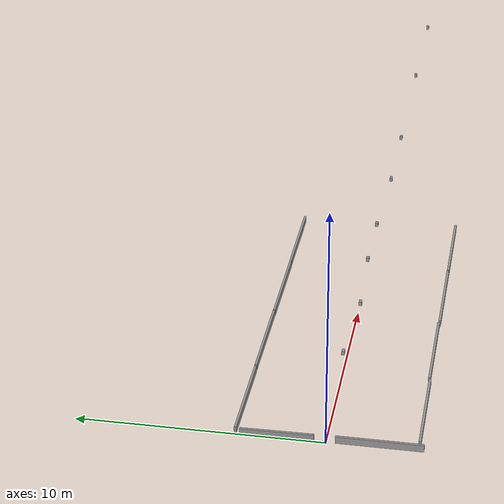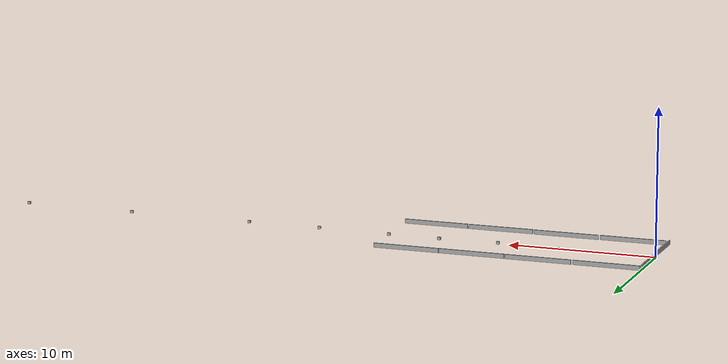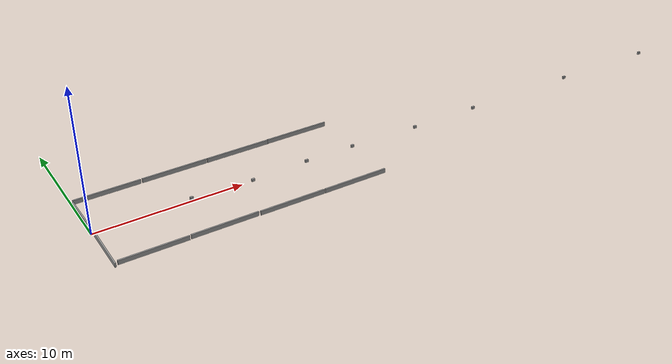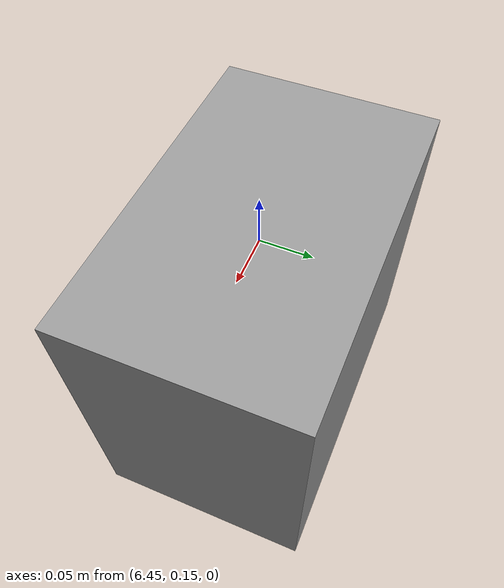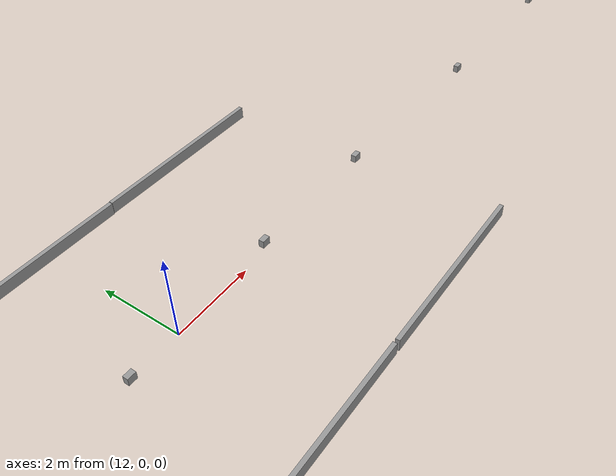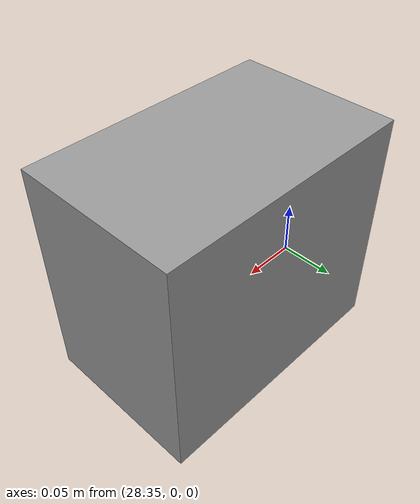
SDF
<sdf version="1.6">
 <world name="default">
  <scene>
   <grid>0</grid>
   <ambient>0.4 0.4 0.4 1</ambient>
   <background>0.7 0.7 0.7 1</background>
   <shadows>1</shadows>
  </scene>
  <light name="sun" type="directional">
   <pose>0 0 10 0 -0 0</pose>
   <diffuse>0.8 0.8 0.8 1</diffuse>
   <specular>0.2 0.2 0.2 1</specular>
   <attenuation>
    <range>1000</range>
    <constant>0.9</constant>
    <linear>0.01</linear>
    <quadratic>0.001</quadratic>
   </attenuation>
   <direction>-0.5 0.1 -0.9</direction>
  </light>
  <model name="ground">
   <link name="body">
    <collision name="geom">
     <geometry><plane><normal>0 0 1</normal><size>1 1</size></plane></geometry>
     <surface><friction><ode><mu>100</mu><mu2>50</mu2></ode></friction></surface>
    </collision>
   </link>
   <static>1</static>
  </model>
  <gravity>0 0 -9.8</gravity>
  <magnetic_field>6e-06 2.3e-05 -4.2e-05</magnetic_field>
  <atmosphere type="adiabatic"/>
  <physics name="default_physics" default="0" type="ode">
   <max_step_size>0.001</max_step_size>
   <real_time_factor>1</real_time_factor>
   <real_time_update_rate>1000</real_time_update_rate>
  </physics>
  <spherical_coordinates>
   <surface_model>EARTH_WGS84</surface_model>
   <latitude_deg>0</latitude_deg>
   <longitude_deg>0</longitude_deg>
   <elevation>0</elevation>
   <heading_deg>0</heading_deg>
  </spherical_coordinates>
  <model name="unit_box_clone">
   <pose>18.3576 0.153567 0.092537 0 3e-06 6.1e-05</pose>
   <link name="link">
    <inertial>
     <mass>1</mass>
     <inertia>
      <ixx>0.166667</ixx>
      <ixy>0</ixy>
      <ixz>0</ixz>
      <iyy>0.166667</iyy>
      <iyz>0</iyz>
      <izz>0.166667</izz>
     </inertia>
    </inertial>
    <collision name="collision">
     <geometry><box><size>0.208625 0.131935 0.185073</size></box></geometry>
    </collision>
    <visual name="visual">
     <geometry><box><size>0.208625 0.131935 0.185073</size></box></geometry>
     <material>
      <script><name>Gazebo/Grey</name><uri>file://media/materials/scripts/gazebo.material</uri></script>
     </material>
    </visual>
   </link>
  </model>
  <model name="unit_box_clone_0">
   <pose>14.8199 0.165227 0.092537 1e-06 2e-06 -2.1e-05</pose>
   <link name="link">
    <inertial>
     <mass>1</mass>
     <inertia>
      <ixx>0.166667</ixx>
      <ixy>0</ixy>
      <ixz>0</ixz>
      <iyy>0.166667</iyy>
      <iyz>0</iyz>
      <izz>0.166667</izz>
     </inertia>
    </inertial>
    <collision name="collision">
     <geometry><box><size>0.208625 0.131935 0.185073</size></box></geometry>
    </collision>
    <visual name="visual">
     <geometry><box><size>0.208625 0.131935 0.185073</size></box></geometry>
     <material>
      <script><name>Gazebo/Grey</name><uri>file://media/materials/scripts/gazebo.material</uri></script>
     </material>
    </visual>
   </link>
  </model>
  <model name="unit_box_clone_1">
   <pose>6.57826 0.207009 0.092536 4e-06 3e-06 5.9e-05</pose>
   <link name="link">
    <inertial>
     <mass>1</mass>
     <inertia>
      <ixx>0.166667</ixx>
      <ixy>0</ixy>
      <ixz>0</ixz>
      <iyy>0.166667</iyy>
      <iyz>0</iyz>
      <izz>0.166667</izz>
     </inertia>
    </inertial>
    <collision name="collision">
     <geometry><box><size>0.208625 0.131935 0.185073</size></box></geometry>
    </collision>
    <visual name="visual">
     <geometry><box><size>0.208625 0.131935 0.185073</size></box></geometry>
     <material>
      <script><name>Gazebo/Grey</name><uri>file://media/materials/scripts/gazebo.material</uri></script>
     </material>
    </visual>
   </link>
  </model>
  <model name="unit_box_clone_2">
   <pose>10.7706 -0 0.092537 0 3e-06 4e-05</pose>
   <link name="link">
    <inertial>
     <mass>1</mass>
     <inertia>
      <ixx>0.166667</ixx>
      <ixy>0</ixy>
      <ixz>0</ixz>
      <iyy>0.166667</iyy>
      <iyz>0</iyz>
      <izz>0.166667</izz>
     </inertia>
    </inertial>
    <collision name="collision">
     <geometry><box><size>0.208625 0.131935 0.185073</size></box></geometry>
    </collision>
    <visual name="visual">
     <geometry><box><size>0.208625 0.131935 0.185073</size></box></geometry>
     <material>
      <script><name>Gazebo/Grey</name><uri>file://media/materials/scripts/gazebo.material</uri></script>
     </material>
    </visual>
   </link>
  </model>
  <model name="unit_box_0">
   <pose>2.53327 -3.59011 0.148764 0.000538 2.2e-05 0.000339</pose>
   <link name="link">
    <inertial>
     <mass>1</mass>
     <inertia>
      <ixx>0.166667</ixx>
      <ixy>0</ixy>
      <ixz>0</ixz>
      <iyy>0.166667</iyy>
      <iyz>0</iyz>
      <izz>0.166667</izz>
     </inertia>
    </inertial>
    <collision name="collision"><geometry><box><size>4.48059 0.098067 0.297572</size></box></geometry></collision>
    <visual name="visual">
     <geometry><box><size>4.48059 0.098067 0.297572</size></box></geometry>
     <material>
      <script><name>Gazebo/Grey</name><uri>file://media/materials/scripts/gazebo.material</uri></script>
     </material>
    </visual>
   </link>
  </model>
  <model name="unit_box_0_clone">
   <pose>7.12088 -3.5562 0.147976 -0.000908 -0.000381 -5.9e-05</pose>
   <link name="link">
    <inertial>
     <mass>1</mass>
     <inertia>
      <ixx>0.166667</ixx>
      <ixy>0</ixy>
      <ixz>0</ixz>
      <iyy>0.166667</iyy>
      <iyz>0</iyz>
      <izz>0.166667</izz>
     </inertia>
    </inertial>
    <collision name="collision"><geometry><box><size>4.4806 0.098067 0.297572</size></box></geometry></collision>
    <visual name="visual">
     <geometry><box><size>4.4806 0.098067 0.297572</size></box></geometry>
     <material>
      <script><name>Gazebo/Grey</name><uri>file://media/materials/scripts/gazebo.material</uri></script>
     </material>
    </visual>
   </link>
  </model>
  <model name="unit_box_0_clone_0">
   <pose>11.7118 -3.59255 0.147701 -0.000765 0.000501 0</pose>
   <link name="link">
    <inertial>
     <mass>1</mass>
     <inertia>
      <ixx>0.166667</ixx>
      <ixy>0</ixy>
      <ixz>0</ixz>
      <iyy>0.166667</iyy>
      <iyz>0</iyz>
      <izz>0.166667</izz>
     </inertia>
    </inertial>
    <collision name="collision"><geometry><box><size>4.4806 0.098067 0.297572</size></box></geometry></collision>
    <visual name="visual">
     <geometry><box><size>4.4806 0.098067 0.297572</size></box></geometry>
     <material>
      <script><name>Gazebo/Grey</name><uri>file://media/materials/scripts/gazebo.material</uri></script>
     </material>
    </visual>
   </link>
  </model>
  <model name="unit_box_0_clone_1">
   <pose>16.2716 -3.59871 0.147977 -0.000913 -0.000381 -1e-06</pose>
   <link name="link">
    <inertial>
     <mass>1</mass>
     <inertia>
      <ixx>0.166667</ixx>
      <ixy>0</ixy>
      <ixz>0</ixz>
      <iyy>0.166667</iyy>
      <iyz>0</iyz>
      <izz>0.166667</izz>
     </inertia>
    </inertial>
    <collision name="collision"><geometry><box><size>4.4806 0.098067 0.297572</size></box></geometry></collision>
    <visual name="visual">
     <geometry><box><size>4.4806 0.098067 0.297572</size></box></geometry>
     <material>
      <script><name>Gazebo/Grey</name><uri>file://media/materials/scripts/gazebo.material</uri></script>
     </material>
    </visual>
   </link>
  </model>
  <model name="unit_box_0_clone_2">
   <pose>2.3302 3.59076 0.147302 0.000292 -0.000669 0.000138</pose>
   <link name="link">
    <inertial>
     <mass>1</mass>
     <inertia>
      <ixx>0.166667</ixx>
      <ixy>0</ixy>
      <ixz>0</ixz>
      <iyy>0.166667</iyy>
      <iyz>0</iyz>
      <izz>0.166667</izz>
     </inertia>
    </inertial>
    <collision name="collision"><geometry><box><size>4.4806 0.098067 0.297572</size></box></geometry></collision>
    <visual name="visual">
     <geometry><box><size>4.4806 0.098067 0.297572</size></box></geometry>
     <material>
      <script><name>Gazebo/Grey</name><uri>file://media/materials/scripts/gazebo.material</uri></script>
     </material>
    </visual>
   </link>
  </model>
  <model name="unit_box_0_clone_3">
   <pose>6.91565 3.59862 0.147669 0.000786 0.000516 3e-06</pose>
   <link name="link">
    <inertial>
     <mass>1</mass>
     <inertia>
      <ixx>0.166667</ixx>
      <ixy>0</ixy>
      <ixz>0</ixz>
      <iyy>0.166667</iyy>
      <iyz>0</iyz>
      <izz>0.166667</izz>
     </inertia>
    </inertial>
    <collision name="collision"><geometry><box><size>4.4806 0.098067 0.297572</size></box></geometry></collision>
    <visual name="visual">
     <geometry><box><size>4.4806 0.098067 0.297572</size></box></geometry>
     <material>
      <script><name>Gazebo/Grey</name><uri>file://media/materials/scripts/gazebo.material</uri></script>
     </material>
    </visual>
   </link>
  </model>
  <model name="unit_box_0_clone_4">
   <pose>11.4583 3.59109 0.148392 0.000826 -0.000194 2e-06</pose>
   <link name="link">
    <inertial>
     <mass>1</mass>
     <inertia>
      <ixx>0.166667</ixx>
      <ixy>0</ixy>
      <ixz>0</ixz>
      <iyy>0.166667</iyy>
      <iyz>0</iyz>
      <izz>0.166667</izz>
     </inertia>
    </inertial>
    <collision name="collision"><geometry><box><size>4.4806 0.098067 0.297572</size></box></geometry></collision>
    <visual name="visual">
     <geometry><box><size>4.4806 0.098067 0.297572</size></box></geometry>
     <material>
      <script><name>Gazebo/Grey</name><uri>file://media/materials/scripts/gazebo.material</uri></script>
     </material>
    </visual>
   </link>
  </model>
  <model name="unit_box_0_clone_5">
   <pose>15.9504 3.60534 0.148657 0.000603 7.1e-05 0</pose>
   <link name="link">
    <inertial>
     <mass>1</mass>
     <inertia>
      <ixx>0.166667</ixx>
      <ixy>0</ixy>
      <ixz>0</ixz>
      <iyy>0.166667</iyy>
      <iyz>0</iyz>
      <izz>0.166667</izz>
     </inertia>
    </inertial>
    <collision name="collision"><geometry><box><size>4.4806 0.098067 0.297572</size></box></geometry></collision>
    <visual name="visual">
     <geometry><box><size>4.4806 0.098067 0.297572</size></box></geometry>
     <material>
      <script><name>Gazebo/Grey</name><uri>file://media/materials/scripts/gazebo.material</uri></script>
     </material>
    </visual>
   </link>
  </model>
  <model name="unit_box_clone_0_clone">
   <pose>37.1252 0.071099 0.092536 -3e-06 -3e-06 7.4e-05</pose>
   <link name="link">
    <inertial>
     <mass>1</mass>
     <inertia>
      <ixx>0.166667</ixx>
      <ixy>0</ixy>
      <ixz>0</ixz>
      <iyy>0.166667</iyy>
      <iyz>0</iyz>
      <izz>0.166667</izz>
     </inertia>
    </inertial>
    <collision name="collision">
     <geometry><box><size>0.208625 0.131935 0.185073</size></box></geometry>
    </collision>
    <visual name="visual">
     <geometry><box><size>0.208625 0.131935 0.185073</size></box></geometry>
     <material>
      <script><name>Gazebo/Grey</name><uri>file://media/materials/scripts/gazebo.material</uri></script>
     </material>
    </visual>
   </link>
  </model>
  <model name="unit_box_clone_0_clone_0">
   <pose>23.3906 0.001329 0.092536 -1e-06 4e-06 -6e-06</pose>
   <link name="link">
    <inertial>
     <mass>1</mass>
     <inertia>
      <ixx>0.166667</ixx>
      <ixy>0</ixy>
      <ixz>0</ixz>
      <iyy>0.166667</iyy>
      <iyz>0</iyz>
      <izz>0.166667</izz>
     </inertia>
    </inertial>
    <collision name="collision">
     <geometry><box><size>0.208625 0.131935 0.185073</size></box></geometry>
    </collision>
    <visual name="visual">
     <geometry><box><size>0.208625 0.131935 0.185073</size></box></geometry>
     <material>
      <script><name>Gazebo/Grey</name><uri>file://media/materials/scripts/gazebo.material</uri></script>
     </material>
    </visual>
   </link>
  </model>
  <model name="unit_box_clone_0_clone_1">
   <pose>44.9111 0.066569 0.092536 -1e-06 3e-06 2e-06</pose>
   <link name="link">
    <inertial>
     <mass>1</mass>
     <inertia>
      <ixx>0.166667</ixx>
      <ixy>0</ixy>
      <ixz>0</ixz>
      <iyy>0.166667</iyy>
      <iyz>0</iyz>
      <izz>0.166667</izz>
     </inertia>
    </inertial>
    <collision name="collision">
     <geometry><box><size>0.208625 0.131935 0.185073</size></box></geometry>
    </collision>
    <visual name="visual">
     <geometry><box><size>0.208625 0.131935 0.185073</size></box></geometry>
     <material>
      <script><name>Gazebo/Grey</name><uri>file://media/materials/scripts/gazebo.material</uri></script>
     </material>
    </visual>
   </link>
  </model>
  <model name="unit_box_clone_0_clone_2">
   <pose>28.4714 0.025506 0.092536 3e-06 -3e-06 5.4e-05</pose>
   <link name="link">
    <inertial>
     <mass>1</mass>
     <inertia>
      <ixx>0.166667</ixx>
      <ixy>0</ixy>
      <ixz>0</ixz>
      <iyy>0.166667</iyy>
      <iyz>0</iyz>
      <izz>0.166667</izz>
     </inertia>
    </inertial>
    <collision name="collision">
     <geometry><box><size>0.208625 0.131935 0.185073</size></box></geometry>
    </collision>
    <visual name="visual">
     <geometry><box><size>0.208625 0.131935 0.185073</size></box></geometry>
     <material>
      <script><name>Gazebo/Grey</name><uri>file://media/materials/scripts/gazebo.material</uri></script>
     </material>
    </visual>
   </link>
  </model>
  <model name="unit_box_0_clone_6">
   <pose>0.100821 -2.06539 0.148179 -7e-06 0.000353 1.56674</pose>
   <link name="link">
    <inertial>
     <mass>1</mass>
     <inertia>
      <ixx>0.166667</ixx>
      <ixy>0</ixy>
      <ixz>0</ixz>
      <iyy>0.166667</iyy>
      <iyz>0</iyz>
      <izz>0.166667</izz>
     </inertia>
    </inertial>
    <collision name="collision"><geometry><box><size>3.44812 0.098067 0.297572</size></box></geometry></collision>
    <visual name="visual">
     <geometry><box><size>3.44812 0.098067 0.297572</size></box></geometry>
     <material>
      <script><name>Gazebo/Grey</name><uri>file://media/materials/scripts/gazebo.material</uri></script>
     </material>
    </visual>
   </link>
  </model>
  <model name="unit_box_0_clone_6_clone">
   <pose>0.056276 1.94613 0.148495 5e-06 0.0002 1.58249</pose>
   <link name="link">
    <inertial>
     <mass>1</mass>
     <inertia>
      <ixx>0.166667</ixx>
      <ixy>0</ixy>
      <ixz>0</ixz>
      <iyy>0.166667</iyy>
      <iyz>0</iyz>
      <izz>0.166667</izz>
     </inertia>
    </inertial>
    <collision name="collision"><geometry><box><size>2.91505 0.098067 0.297572</size></box></geometry></collision>
    <visual name="visual">
     <geometry><box><size>2.91505 0.098067 0.297572</size></box></geometry>
     <material>
      <script><name>Gazebo/Grey</name><uri>file://media/materials/scripts/gazebo.material</uri></script>
     </material>
    </visual>
   </link>
  </model>
 </world>
</sdf>
